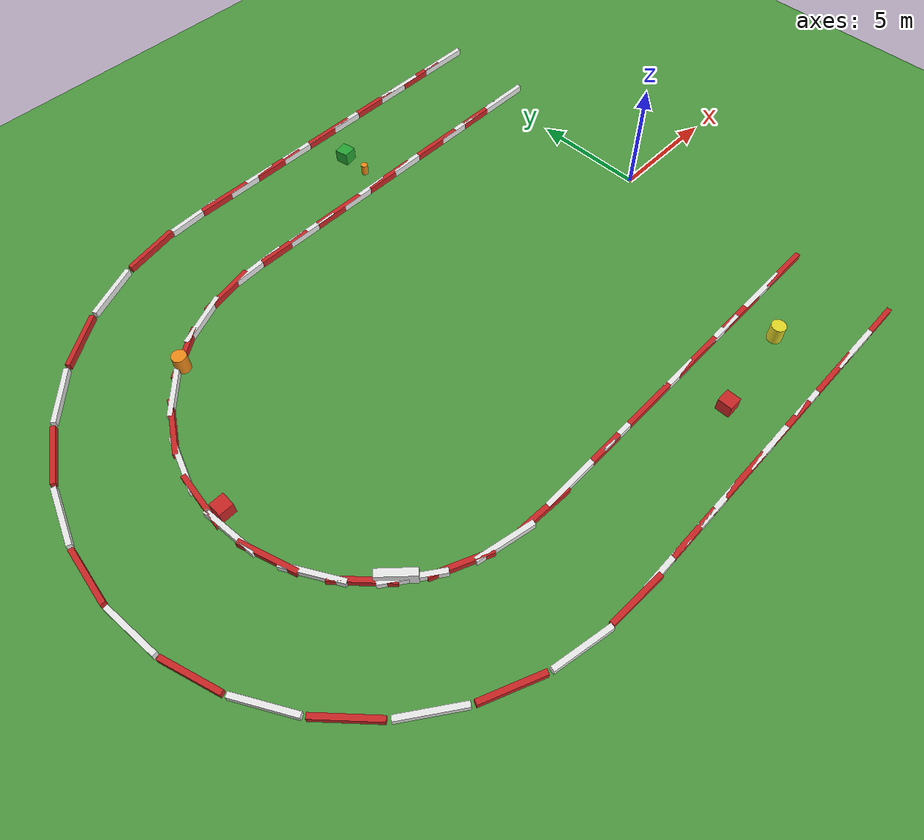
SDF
<sdf version="1.6">
 <world name="road_world">
  <include><uri>model://sun</uri></include>
  <model name="grass_ground_plane">
   <static>true</static>
   <link name="link">
    <collision name="collision">
     <geometry><plane><normal>0 0 1</normal><size>150 150</size></plane></geometry>
     <surface>
      <contact><collide_bitmask>0xffff</collide_bitmask></contact>
      <friction><ode><mu>100</mu><mu2>50</mu2></ode></friction>
     </surface>
    </collision>
    <visual name="visual">
     <cast_shadows>false</cast_shadows>
     <geometry><plane><normal>0 0 1</normal><size>150 150</size></plane></geometry>
     <material>
      <script><uri>file://media/materials/scripts/gazebo.material</uri><name>Gazebo/Grass</name></script>
     </material>
    </visual>
   </link>
  </model>
  <model name="left_curb_0">
   <static>true</static>
   <pose>-14.872 -7.904 0.15 0 0 -0.061</pose>
   <link name="link">
    <collision name="collision"><geometry><box><size>2.4 0.2 0.3</size></box></geometry></collision>
    <visual name="visual">
     <geometry><box><size>2.4 0.2 0.3</size></box></geometry>
     <material>
      <script><uri>file://media/materials/scripts/gazebo.material</uri><name>Gazebo/Red</name></script>
     </material>
    </visual>
   </link>
  </model>
  <model name="left_curb_1">
   <static>true</static>
   <pose>-13.500 -7.900 0.15 0 0 0.000</pose>
   <link name="link">
    <collision name="collision"><geometry><box><size>2.4 0.2 0.3</size></box></geometry></collision>
    <visual name="visual">
     <geometry><box><size>2.4 0.2 0.3</size></box></geometry>
     <material>
      <script><uri>file://media/materials/scripts/gazebo.material</uri><name>Gazebo/White</name></script>
     </material>
    </visual>
   </link>
  </model>
  <model name="left_curb_2">
   <static>true</static>
   <pose>-12.000 -7.900 0.15 0 0 0.000</pose>
   <link name="link">
    <collision name="collision"><geometry><box><size>2.4 0.2 0.3</size></box></geometry></collision>
    <visual name="visual">
     <geometry><box><size>2.4 0.2 0.3</size></box></geometry>
     <material>
      <script><uri>file://media/materials/scripts/gazebo.material</uri><name>Gazebo/Red</name></script>
     </material>
    </visual>
   </link>
  </model>
  <model name="left_curb_3">
   <static>true</static>
   <pose>-10.500 -7.900 0.15 0 0 0.000</pose>
   <link name="link">
    <collision name="collision"><geometry><box><size>2.4 0.2 0.3</size></box></geometry></collision>
    <visual name="visual">
     <geometry><box><size>2.4 0.2 0.3</size></box></geometry>
     <material>
      <script><uri>file://media/materials/scripts/gazebo.material</uri><name>Gazebo/White</name></script>
     </material>
    </visual>
   </link>
  </model>
  <model name="left_curb_4">
   <static>true</static>
   <pose>-9.000 -7.900 0.15 0 0 0.000</pose>
   <link name="link">
    <collision name="collision"><geometry><box><size>2.4 0.2 0.3</size></box></geometry></collision>
    <visual name="visual">
     <geometry><box><size>2.4 0.2 0.3</size></box></geometry>
     <material>
      <script><uri>file://media/materials/scripts/gazebo.material</uri><name>Gazebo/Red</name></script>
     </material>
    </visual>
   </link>
  </model>
  <model name="left_curb_5">
   <static>true</static>
   <pose>-7.500 -7.900 0.15 0 0 0.000</pose>
   <link name="link">
    <collision name="collision"><geometry><box><size>2.4 0.2 0.3</size></box></geometry></collision>
    <visual name="visual">
     <geometry><box><size>2.4 0.2 0.3</size></box></geometry>
     <material>
      <script><uri>file://media/materials/scripts/gazebo.material</uri><name>Gazebo/White</name></script>
     </material>
    </visual>
   </link>
  </model>
  <model name="left_curb_6">
   <static>true</static>
   <pose>-6.000 -7.900 0.15 0 0 0.000</pose>
   <link name="link">
    <collision name="collision"><geometry><box><size>2.4 0.2 0.3</size></box></geometry></collision>
    <visual name="visual">
     <geometry><box><size>2.4 0.2 0.3</size></box></geometry>
     <material>
      <script><uri>file://media/materials/scripts/gazebo.material</uri><name>Gazebo/Red</name></script>
     </material>
    </visual>
   </link>
  </model>
  <model name="left_curb_7">
   <static>true</static>
   <pose>-4.500 -7.900 0.15 0 0 0.000</pose>
   <link name="link">
    <collision name="collision"><geometry><box><size>2.4 0.2 0.3</size></box></geometry></collision>
    <visual name="visual">
     <geometry><box><size>2.4 0.2 0.3</size></box></geometry>
     <material>
      <script><uri>file://media/materials/scripts/gazebo.material</uri><name>Gazebo/White</name></script>
     </material>
    </visual>
   </link>
  </model>
  <model name="left_curb_8">
   <static>true</static>
   <pose>-3.000 -7.900 0.15 0 0 0.000</pose>
   <link name="link">
    <collision name="collision"><geometry><box><size>2.4 0.2 0.3</size></box></geometry></collision>
    <visual name="visual">
     <geometry><box><size>2.4 0.2 0.3</size></box></geometry>
     <material>
      <script><uri>file://media/materials/scripts/gazebo.material</uri><name>Gazebo/Red</name></script>
     </material>
    </visual>
   </link>
  </model>
  <model name="left_curb_9">
   <static>true</static>
   <pose>-1.500 -7.900 0.15 0 0 0.000</pose>
   <link name="link">
    <collision name="collision"><geometry><box><size>2.4 0.2 0.3</size></box></geometry></collision>
    <visual name="visual">
     <geometry><box><size>2.4 0.2 0.3</size></box></geometry>
     <material>
      <script><uri>file://media/materials/scripts/gazebo.material</uri><name>Gazebo/White</name></script>
     </material>
    </visual>
   </link>
  </model>
  <model name="left_curb_10">
   <static>true</static>
   <pose>0.000 -7.900 0.15 0 0 0.000</pose>
   <link name="link">
    <collision name="collision"><geometry><box><size>2.4 0.2 0.3</size></box></geometry></collision>
    <visual name="visual">
     <geometry><box><size>2.4 0.2 0.3</size></box></geometry>
     <material>
      <script><uri>file://media/materials/scripts/gazebo.material</uri><name>Gazebo/Red</name></script>
     </material>
    </visual>
   </link>
  </model>
  <model name="left_curb_45">
   <static>true</static>
   <pose>0.000 7.900 0.15 0 0 3.142</pose>
   <link name="link">
    <collision name="collision"><geometry><box><size>2.4 0.2 0.3</size></box></geometry></collision>
    <visual name="visual">
     <geometry><box><size>2.4 0.2 0.3</size></box></geometry>
     <material>
      <script><uri>file://media/materials/scripts/gazebo.material</uri><name>Gazebo/White</name></script>
     </material>
    </visual>
   </link>
  </model>
  <model name="left_curb_46">
   <static>true</static>
   <pose>-1.500 7.900 0.15 0 0 3.142</pose>
   <link name="link">
    <collision name="collision"><geometry><box><size>2.4 0.2 0.3</size></box></geometry></collision>
    <visual name="visual">
     <geometry><box><size>2.4 0.2 0.3</size></box></geometry>
     <material>
      <script><uri>file://media/materials/scripts/gazebo.material</uri><name>Gazebo/Red</name></script>
     </material>
    </visual>
   </link>
  </model>
  <model name="left_curb_47">
   <static>true</static>
   <pose>-3.000 7.900 0.15 0 0 3.142</pose>
   <link name="link">
    <collision name="collision"><geometry><box><size>2.4 0.2 0.3</size></box></geometry></collision>
    <visual name="visual">
     <geometry><box><size>2.4 0.2 0.3</size></box></geometry>
     <material>
      <script><uri>file://media/materials/scripts/gazebo.material</uri><name>Gazebo/White</name></script>
     </material>
    </visual>
   </link>
  </model>
  <model name="left_curb_48">
   <static>true</static>
   <pose>-4.500 7.900 0.15 0 0 3.142</pose>
   <link name="link">
    <collision name="collision"><geometry><box><size>2.4 0.2 0.3</size></box></geometry></collision>
    <visual name="visual">
     <geometry><box><size>2.4 0.2 0.3</size></box></geometry>
     <material>
      <script><uri>file://media/materials/scripts/gazebo.material</uri><name>Gazebo/Red</name></script>
     </material>
    </visual>
   </link>
  </model>
  <model name="left_curb_49">
   <static>true</static>
   <pose>-6.000 7.900 0.15 0 0 3.142</pose>
   <link name="link">
    <collision name="collision"><geometry><box><size>2.4 0.2 0.3</size></box></geometry></collision>
    <visual name="visual">
     <geometry><box><size>2.4 0.2 0.3</size></box></geometry>
     <material>
      <script><uri>file://media/materials/scripts/gazebo.material</uri><name>Gazebo/White</name></script>
     </material>
    </visual>
   </link>
  </model>
  <model name="left_curb_50">
   <static>true</static>
   <pose>-7.500 7.900 0.15 0 0 3.142</pose>
   <link name="link">
    <collision name="collision"><geometry><box><size>2.4 0.2 0.3</size></box></geometry></collision>
    <visual name="visual">
     <geometry><box><size>2.4 0.2 0.3</size></box></geometry>
     <material>
      <script><uri>file://media/materials/scripts/gazebo.material</uri><name>Gazebo/Red</name></script>
     </material>
    </visual>
   </link>
  </model>
  <model name="left_curb_51">
   <static>true</static>
   <pose>-9.000 7.900 0.15 0 0 3.142</pose>
   <link name="link">
    <collision name="collision"><geometry><box><size>2.4 0.2 0.3</size></box></geometry></collision>
    <visual name="visual">
     <geometry><box><size>2.4 0.2 0.3</size></box></geometry>
     <material>
      <script><uri>file://media/materials/scripts/gazebo.material</uri><name>Gazebo/White</name></script>
     </material>
    </visual>
   </link>
  </model>
  <model name="left_curb_52">
   <static>true</static>
   <pose>-10.500 7.900 0.15 0 0 3.142</pose>
   <link name="link">
    <collision name="collision"><geometry><box><size>2.4 0.2 0.3</size></box></geometry></collision>
    <visual name="visual">
     <geometry><box><size>2.4 0.2 0.3</size></box></geometry>
     <material>
      <script><uri>file://media/materials/scripts/gazebo.material</uri><name>Gazebo/Red</name></script>
     </material>
    </visual>
   </link>
  </model>
  <model name="left_curb_53">
   <static>true</static>
   <pose>-12.000 7.900 0.15 0 0 3.142</pose>
   <link name="link">
    <collision name="collision"><geometry><box><size>2.4 0.2 0.3</size></box></geometry></collision>
    <visual name="visual">
     <geometry><box><size>2.4 0.2 0.3</size></box></geometry>
     <material>
      <script><uri>file://media/materials/scripts/gazebo.material</uri><name>Gazebo/White</name></script>
     </material>
    </visual>
   </link>
  </model>
  <model name="left_curb_54">
   <static>true</static>
   <pose>-13.500 7.900 0.15 0 0 3.142</pose>
   <link name="link">
    <collision name="collision"><geometry><box><size>2.4 0.2 0.3</size></box></geometry></collision>
    <visual name="visual">
     <geometry><box><size>2.4 0.2 0.3</size></box></geometry>
     <material>
      <script><uri>file://media/materials/scripts/gazebo.material</uri><name>Gazebo/Red</name></script>
     </material>
    </visual>
   </link>
  </model>
  <model name="left_curb_55">
   <static>true</static>
   <pose>-14.872 7.904 0.15 0 0 -3.081</pose>
   <link name="link">
    <collision name="collision"><geometry><box><size>2.4 0.2 0.3</size></box></geometry></collision>
    <visual name="visual">
     <geometry><box><size>2.4 0.2 0.3</size></box></geometry>
     <material>
      <script><uri>file://media/materials/scripts/gazebo.material</uri><name>Gazebo/White</name></script>
     </material>
    </visual>
   </link>
  </model>
  <model name="left_curb_56">
   <static>true</static>
   <pose>-16.643 7.727 0.15 0 0 -2.932</pose>
   <link name="link">
    <collision name="collision"><geometry><box><size>2.4 0.2 0.3</size></box></geometry></collision>
    <visual name="visual">
     <geometry><box><size>2.4 0.2 0.3</size></box></geometry>
     <material>
      <script><uri>file://media/materials/scripts/gazebo.material</uri><name>Gazebo/Red</name></script>
     </material>
    </visual>
   </link>
  </model>
  <model name="left_curb_57">
   <static>true</static>
   <pose>-18.213 7.217 0.15 0 0 -2.723</pose>
   <link name="link">
    <collision name="collision"><geometry><box><size>2.4 0.2 0.3</size></box></geometry></collision>
    <visual name="visual">
     <geometry><box><size>2.4 0.2 0.3</size></box></geometry>
     <material>
      <script><uri>file://media/materials/scripts/gazebo.material</uri><name>Gazebo/White</name></script>
     </material>
    </visual>
   </link>
  </model>
  <model name="left_curb_58">
   <static>true</static>
   <pose>-19.644 6.391 0.15 0 0 -2.513</pose>
   <link name="link">
    <collision name="collision"><geometry><box><size>2.4 0.2 0.3</size></box></geometry></collision>
    <visual name="visual">
     <geometry><box><size>2.4 0.2 0.3</size></box></geometry>
     <material>
      <script><uri>file://media/materials/scripts/gazebo.material</uri><name>Gazebo/Red</name></script>
     </material>
    </visual>
   </link>
  </model>
  <model name="left_curb_59">
   <static>true</static>
   <pose>-20.871 5.286 0.15 0 0 -2.304</pose>
   <link name="link">
    <collision name="collision"><geometry><box><size>2.4 0.2 0.3</size></box></geometry></collision>
    <visual name="visual">
     <geometry><box><size>2.4 0.2 0.3</size></box></geometry>
     <material>
      <script><uri>file://media/materials/scripts/gazebo.material</uri><name>Gazebo/White</name></script>
     </material>
    </visual>
   </link>
  </model>
  <model name="left_curb_60">
   <static>true</static>
   <pose>-21.842 3.950 0.15 0 0 -2.094</pose>
   <link name="link">
    <collision name="collision"><geometry><box><size>2.4 0.2 0.3</size></box></geometry></collision>
    <visual name="visual">
     <geometry><box><size>2.4 0.2 0.3</size></box></geometry>
     <material>
      <script><uri>file://media/materials/scripts/gazebo.material</uri><name>Gazebo/Red</name></script>
     </material>
    </visual>
   </link>
  </model>
  <model name="left_curb_61">
   <static>true</static>
   <pose>-22.513 2.441 0.15 0 0 -1.885</pose>
   <link name="link">
    <collision name="collision"><geometry><box><size>2.4 0.2 0.3</size></box></geometry></collision>
    <visual name="visual">
     <geometry><box><size>2.4 0.2 0.3</size></box></geometry>
     <material>
      <script><uri>file://media/materials/scripts/gazebo.material</uri><name>Gazebo/White</name></script>
     </material>
    </visual>
   </link>
  </model>
  <model name="left_curb_62">
   <static>true</static>
   <pose>-22.857 0.826 0.15 0 0 -1.676</pose>
   <link name="link">
    <collision name="collision"><geometry><box><size>2.4 0.2 0.3</size></box></geometry></collision>
    <visual name="visual">
     <geometry><box><size>2.4 0.2 0.3</size></box></geometry>
     <material>
      <script><uri>file://media/materials/scripts/gazebo.material</uri><name>Gazebo/Red</name></script>
     </material>
    </visual>
   </link>
  </model>
  <model name="left_curb_63">
   <static>true</static>
   <pose>-22.857 -0.826 0.15 0 0 -1.466</pose>
   <link name="link">
    <collision name="collision"><geometry><box><size>2.4 0.2 0.3</size></box></geometry></collision>
    <visual name="visual">
     <geometry><box><size>2.4 0.2 0.3</size></box></geometry>
     <material>
      <script><uri>file://media/materials/scripts/gazebo.material</uri><name>Gazebo/White</name></script>
     </material>
    </visual>
   </link>
  </model>
  <model name="left_curb_64">
   <static>true</static>
   <pose>-22.513 -2.441 0.15 0 0 -1.257</pose>
   <link name="link">
    <collision name="collision"><geometry><box><size>2.4 0.2 0.3</size></box></geometry></collision>
    <visual name="visual">
     <geometry><box><size>2.4 0.2 0.3</size></box></geometry>
     <material>
      <script><uri>file://media/materials/scripts/gazebo.material</uri><name>Gazebo/Red</name></script>
     </material>
    </visual>
   </link>
  </model>
  <model name="left_curb_65">
   <static>true</static>
   <pose>-21.842 -3.950 0.15 0 0 -1.047</pose>
   <link name="link">
    <collision name="collision"><geometry><box><size>2.4 0.2 0.3</size></box></geometry></collision>
    <visual name="visual">
     <geometry><box><size>2.4 0.2 0.3</size></box></geometry>
     <material>
      <script><uri>file://media/materials/scripts/gazebo.material</uri><name>Gazebo/White</name></script>
     </material>
    </visual>
   </link>
  </model>
  <model name="left_curb_66">
   <static>true</static>
   <pose>-20.871 -5.286 0.15 0 0 -0.838</pose>
   <link name="link">
    <collision name="collision"><geometry><box><size>2.4 0.2 0.3</size></box></geometry></collision>
    <visual name="visual">
     <geometry><box><size>2.4 0.2 0.3</size></box></geometry>
     <material>
      <script><uri>file://media/materials/scripts/gazebo.material</uri><name>Gazebo/Red</name></script>
     </material>
    </visual>
   </link>
  </model>
  <model name="left_curb_67">
   <static>true</static>
   <pose>-19.644 -6.391 0.15 0 0 -0.628</pose>
   <link name="link">
    <collision name="collision"><geometry><box><size>2.4 0.2 0.3</size></box></geometry></collision>
    <visual name="visual">
     <geometry><box><size>2.4 0.2 0.3</size></box></geometry>
     <material>
      <script><uri>file://media/materials/scripts/gazebo.material</uri><name>Gazebo/White</name></script>
     </material>
    </visual>
   </link>
  </model>
  <model name="left_curb_68">
   <static>true</static>
   <pose>-18.213 -7.217 0.15 0 0 -0.419</pose>
   <link name="link">
    <collision name="collision"><geometry><box><size>2.4 0.2 0.3</size></box></geometry></collision>
    <visual name="visual">
     <geometry><box><size>2.4 0.2 0.3</size></box></geometry>
     <material>
      <script><uri>file://media/materials/scripts/gazebo.material</uri><name>Gazebo/Red</name></script>
     </material>
    </visual>
   </link>
  </model>
  <model name="left_curb_69">
   <static>true</static>
   <pose>-16.643 -7.727 0.15 0 0 -0.209</pose>
   <link name="link">
    <collision name="collision"><geometry><box><size>2.4 0.2 0.3</size></box></geometry></collision>
    <visual name="visual">
     <geometry><box><size>2.4 0.2 0.3</size></box></geometry>
     <material>
      <script><uri>file://media/materials/scripts/gazebo.material</uri><name>Gazebo/White</name></script>
     </material>
    </visual>
   </link>
  </model>
  <model name="right_curb_0">
   <static>true</static>
   <pose>-15.128 -12.096 0.15 0 0 -0.061</pose>
   <link name="link">
    <collision name="collision"><geometry><box><size>2.4 0.2 0.3</size></box></geometry></collision>
    <visual name="visual">
     <geometry><box><size>2.4 0.2 0.3</size></box></geometry>
     <material>
      <script><uri>file://media/materials/scripts/gazebo.material</uri><name>Gazebo/Red</name></script>
     </material>
    </visual>
   </link>
  </model>
  <model name="right_curb_1">
   <static>true</static>
   <pose>-13.500 -12.100 0.15 0 0 0.000</pose>
   <link name="link">
    <collision name="collision"><geometry><box><size>2.4 0.2 0.3</size></box></geometry></collision>
    <visual name="visual">
     <geometry><box><size>2.4 0.2 0.3</size></box></geometry>
     <material>
      <script><uri>file://media/materials/scripts/gazebo.material</uri><name>Gazebo/White</name></script>
     </material>
    </visual>
   </link>
  </model>
  <model name="right_curb_2">
   <static>true</static>
   <pose>-12.000 -12.100 0.15 0 0 0.000</pose>
   <link name="link">
    <collision name="collision"><geometry><box><size>2.4 0.2 0.3</size></box></geometry></collision>
    <visual name="visual">
     <geometry><box><size>2.4 0.2 0.3</size></box></geometry>
     <material>
      <script><uri>file://media/materials/scripts/gazebo.material</uri><name>Gazebo/Red</name></script>
     </material>
    </visual>
   </link>
  </model>
  <model name="right_curb_3">
   <static>true</static>
   <pose>-10.500 -12.100 0.15 0 0 0.000</pose>
   <link name="link">
    <collision name="collision"><geometry><box><size>2.4 0.2 0.3</size></box></geometry></collision>
    <visual name="visual">
     <geometry><box><size>2.4 0.2 0.3</size></box></geometry>
     <material>
      <script><uri>file://media/materials/scripts/gazebo.material</uri><name>Gazebo/White</name></script>
     </material>
    </visual>
   </link>
  </model>
  <model name="right_curb_4">
   <static>true</static>
   <pose>-9.000 -12.100 0.15 0 0 0.000</pose>
   <link name="link">
    <collision name="collision"><geometry><box><size>2.4 0.2 0.3</size></box></geometry></collision>
    <visual name="visual">
     <geometry><box><size>2.4 0.2 0.3</size></box></geometry>
     <material>
      <script><uri>file://media/materials/scripts/gazebo.material</uri><name>Gazebo/Red</name></script>
     </material>
    </visual>
   </link>
  </model>
  <model name="right_curb_5">
   <static>true</static>
   <pose>-7.500 -12.100 0.15 0 0 0.000</pose>
   <link name="link">
    <collision name="collision"><geometry><box><size>2.4 0.2 0.3</size></box></geometry></collision>
    <visual name="visual">
     <geometry><box><size>2.4 0.2 0.3</size></box></geometry>
     <material>
      <script><uri>file://media/materials/scripts/gazebo.material</uri><name>Gazebo/White</name></script>
     </material>
    </visual>
   </link>
  </model>
  <model name="right_curb_6">
   <static>true</static>
   <pose>-6.000 -12.100 0.15 0 0 0.000</pose>
   <link name="link">
    <collision name="collision"><geometry><box><size>2.4 0.2 0.3</size></box></geometry></collision>
    <visual name="visual">
     <geometry><box><size>2.4 0.2 0.3</size></box></geometry>
     <material>
      <script><uri>file://media/materials/scripts/gazebo.material</uri><name>Gazebo/Red</name></script>
     </material>
    </visual>
   </link>
  </model>
  <model name="right_curb_7">
   <static>true</static>
   <pose>-4.500 -12.100 0.15 0 0 0.000</pose>
   <link name="link">
    <collision name="collision"><geometry><box><size>2.4 0.2 0.3</size></box></geometry></collision>
    <visual name="visual">
     <geometry><box><size>2.4 0.2 0.3</size></box></geometry>
     <material>
      <script><uri>file://media/materials/scripts/gazebo.material</uri><name>Gazebo/White</name></script>
     </material>
    </visual>
   </link>
  </model>
  <model name="right_curb_8">
   <static>true</static>
   <pose>-3.000 -12.100 0.15 0 0 0.000</pose>
   <link name="link">
    <collision name="collision"><geometry><box><size>2.4 0.2 0.3</size></box></geometry></collision>
    <visual name="visual">
     <geometry><box><size>2.4 0.2 0.3</size></box></geometry>
     <material>
      <script><uri>file://media/materials/scripts/gazebo.material</uri><name>Gazebo/Red</name></script>
     </material>
    </visual>
   </link>
  </model>
  <model name="right_curb_9">
   <static>true</static>
   <pose>-1.500 -12.100 0.15 0 0 0.000</pose>
   <link name="link">
    <collision name="collision"><geometry><box><size>2.4 0.2 0.3</size></box></geometry></collision>
    <visual name="visual">
     <geometry><box><size>2.4 0.2 0.3</size></box></geometry>
     <material>
      <script><uri>file://media/materials/scripts/gazebo.material</uri><name>Gazebo/White</name></script>
     </material>
    </visual>
   </link>
  </model>
  <model name="right_curb_10">
   <static>true</static>
   <pose>0.000 -12.100 0.15 0 0 0.000</pose>
   <link name="link">
    <collision name="collision"><geometry><box><size>2.4 0.2 0.3</size></box></geometry></collision>
    <visual name="visual">
     <geometry><box><size>2.4 0.2 0.3</size></box></geometry>
     <material>
      <script><uri>file://media/materials/scripts/gazebo.material</uri><name>Gazebo/Red</name></script>
     </material>
    </visual>
   </link>
  </model>
  <model name="right_curb_45">
   <static>true</static>
   <pose>0.000 12.100 0.15 0 0 3.142</pose>
   <link name="link">
    <collision name="collision"><geometry><box><size>2.4 0.2 0.3</size></box></geometry></collision>
    <visual name="visual">
     <geometry><box><size>2.4 0.2 0.3</size></box></geometry>
     <material>
      <script><uri>file://media/materials/scripts/gazebo.material</uri><name>Gazebo/White</name></script>
     </material>
    </visual>
   </link>
  </model>
  <model name="right_curb_46">
   <static>true</static>
   <pose>-1.500 12.100 0.15 0 0 3.142</pose>
   <link name="link">
    <collision name="collision"><geometry><box><size>2.4 0.2 0.3</size></box></geometry></collision>
    <visual name="visual">
     <geometry><box><size>2.4 0.2 0.3</size></box></geometry>
     <material>
      <script><uri>file://media/materials/scripts/gazebo.material</uri><name>Gazebo/Red</name></script>
     </material>
    </visual>
   </link>
  </model>
  <model name="right_curb_47">
   <static>true</static>
   <pose>-3.000 12.100 0.15 0 0 3.142</pose>
   <link name="link">
    <collision name="collision"><geometry><box><size>2.4 0.2 0.3</size></box></geometry></collision>
    <visual name="visual">
     <geometry><box><size>2.4 0.2 0.3</size></box></geometry>
     <material>
      <script><uri>file://media/materials/scripts/gazebo.material</uri><name>Gazebo/White</name></script>
     </material>
    </visual>
   </link>
  </model>
  <model name="right_curb_48">
   <static>true</static>
   <pose>-4.500 12.100 0.15 0 0 3.142</pose>
   <link name="link">
    <collision name="collision"><geometry><box><size>2.4 0.2 0.3</size></box></geometry></collision>
    <visual name="visual">
     <geometry><box><size>2.4 0.2 0.3</size></box></geometry>
     <material>
      <script><uri>file://media/materials/scripts/gazebo.material</uri><name>Gazebo/Red</name></script>
     </material>
    </visual>
   </link>
  </model>
  <model name="right_curb_49">
   <static>true</static>
   <pose>-6.000 12.100 0.15 0 0 3.142</pose>
   <link name="link">
    <collision name="collision"><geometry><box><size>2.4 0.2 0.3</size></box></geometry></collision>
    <visual name="visual">
     <geometry><box><size>2.4 0.2 0.3</size></box></geometry>
     <material>
      <script><uri>file://media/materials/scripts/gazebo.material</uri><name>Gazebo/White</name></script>
     </material>
    </visual>
   </link>
  </model>
  <model name="right_curb_50">
   <static>true</static>
   <pose>-7.500 12.100 0.15 0 0 3.142</pose>
   <link name="link">
    <collision name="collision"><geometry><box><size>2.4 0.2 0.3</size></box></geometry></collision>
    <visual name="visual">
     <geometry><box><size>2.4 0.2 0.3</size></box></geometry>
     <material>
      <script><uri>file://media/materials/scripts/gazebo.material</uri><name>Gazebo/Red</name></script>
     </material>
    </visual>
   </link>
  </model>
  <model name="right_curb_51">
   <static>true</static>
   <pose>-9.000 12.100 0.15 0 0 3.142</pose>
   <link name="link">
    <collision name="collision"><geometry><box><size>2.4 0.2 0.3</size></box></geometry></collision>
    <visual name="visual">
     <geometry><box><size>2.4 0.2 0.3</size></box></geometry>
     <material>
      <script><uri>file://media/materials/scripts/gazebo.material</uri><name>Gazebo/White</name></script>
     </material>
    </visual>
   </link>
  </model>
  <model name="right_curb_52">
   <static>true</static>
   <pose>-10.500 12.100 0.15 0 0 3.142</pose>
   <link name="link">
    <collision name="collision"><geometry><box><size>2.4 0.2 0.3</size></box></geometry></collision>
    <visual name="visual">
     <geometry><box><size>2.4 0.2 0.3</size></box></geometry>
     <material>
      <script><uri>file://media/materials/scripts/gazebo.material</uri><name>Gazebo/Red</name></script>
     </material>
    </visual>
   </link>
  </model>
  <model name="right_curb_53">
   <static>true</static>
   <pose>-12.000 12.100 0.15 0 0 3.142</pose>
   <link name="link">
    <collision name="collision"><geometry><box><size>2.4 0.2 0.3</size></box></geometry></collision>
    <visual name="visual">
     <geometry><box><size>2.4 0.2 0.3</size></box></geometry>
     <material>
      <script><uri>file://media/materials/scripts/gazebo.material</uri><name>Gazebo/White</name></script>
     </material>
    </visual>
   </link>
  </model>
  <model name="right_curb_54">
   <static>true</static>
   <pose>-13.500 12.100 0.15 0 0 3.142</pose>
   <link name="link">
    <collision name="collision"><geometry><box><size>2.4 0.2 0.3</size></box></geometry></collision>
    <visual name="visual">
     <geometry><box><size>2.4 0.2 0.3</size></box></geometry>
     <material>
      <script><uri>file://media/materials/scripts/gazebo.material</uri><name>Gazebo/Red</name></script>
     </material>
    </visual>
   </link>
  </model>
  <model name="right_curb_55">
   <static>true</static>
   <pose>-15.128 12.096 0.15 0 0 -3.081</pose>
   <link name="link">
    <collision name="collision"><geometry><box><size>2.4 0.2 0.3</size></box></geometry></collision>
    <visual name="visual">
     <geometry><box><size>2.4 0.2 0.3</size></box></geometry>
     <material>
      <script><uri>file://media/materials/scripts/gazebo.material</uri><name>Gazebo/White</name></script>
     </material>
    </visual>
   </link>
  </model>
  <model name="right_curb_56">
   <static>true</static>
   <pose>-17.516 11.836 0.15 0 0 -2.932</pose>
   <link name="link">
    <collision name="collision"><geometry><box><size>2.4 0.2 0.3</size></box></geometry></collision>
    <visual name="visual">
     <geometry><box><size>2.4 0.2 0.3</size></box></geometry>
     <material>
      <script><uri>file://media/materials/scripts/gazebo.material</uri><name>Gazebo/Red</name></script>
     </material>
    </visual>
   </link>
  </model>
  <model name="right_curb_57">
   <static>true</static>
   <pose>-19.922 11.054 0.15 0 0 -2.723</pose>
   <link name="link">
    <collision name="collision"><geometry><box><size>2.4 0.2 0.3</size></box></geometry></collision>
    <visual name="visual">
     <geometry><box><size>2.4 0.2 0.3</size></box></geometry>
     <material>
      <script><uri>file://media/materials/scripts/gazebo.material</uri><name>Gazebo/White</name></script>
     </material>
    </visual>
   </link>
  </model>
  <model name="right_curb_58">
   <static>true</static>
   <pose>-22.112 9.789 0.15 0 0 -2.513</pose>
   <link name="link">
    <collision name="collision"><geometry><box><size>2.4 0.2 0.3</size></box></geometry></collision>
    <visual name="visual">
     <geometry><box><size>2.4 0.2 0.3</size></box></geometry>
     <material>
      <script><uri>file://media/materials/scripts/gazebo.material</uri><name>Gazebo/Red</name></script>
     </material>
    </visual>
   </link>
  </model>
  <model name="right_curb_59">
   <static>true</static>
   <pose>-23.992 8.096 0.15 0 0 -2.304</pose>
   <link name="link">
    <collision name="collision"><geometry><box><size>2.4 0.2 0.3</size></box></geometry></collision>
    <visual name="visual">
     <geometry><box><size>2.4 0.2 0.3</size></box></geometry>
     <material>
      <script><uri>file://media/materials/scripts/gazebo.material</uri><name>Gazebo/White</name></script>
     </material>
    </visual>
   </link>
  </model>
  <model name="right_curb_60">
   <static>true</static>
   <pose>-25.479 6.050 0.15 0 0 -2.094</pose>
   <link name="link">
    <collision name="collision"><geometry><box><size>2.4 0.2 0.3</size></box></geometry></collision>
    <visual name="visual">
     <geometry><box><size>2.4 0.2 0.3</size></box></geometry>
     <material>
      <script><uri>file://media/materials/scripts/gazebo.material</uri><name>Gazebo/Red</name></script>
     </material>
    </visual>
   </link>
  </model>
  <model name="right_curb_61">
   <static>true</static>
   <pose>-26.508 3.739 0.15 0 0 -1.885</pose>
   <link name="link">
    <collision name="collision"><geometry><box><size>2.4 0.2 0.3</size></box></geometry></collision>
    <visual name="visual">
     <geometry><box><size>2.4 0.2 0.3</size></box></geometry>
     <material>
      <script><uri>file://media/materials/scripts/gazebo.material</uri><name>Gazebo/White</name></script>
     </material>
    </visual>
   </link>
  </model>
  <model name="right_curb_62">
   <static>true</static>
   <pose>-27.034 1.265 0.15 0 0 -1.676</pose>
   <link name="link">
    <collision name="collision"><geometry><box><size>2.4 0.2 0.3</size></box></geometry></collision>
    <visual name="visual">
     <geometry><box><size>2.4 0.2 0.3</size></box></geometry>
     <material>
      <script><uri>file://media/materials/scripts/gazebo.material</uri><name>Gazebo/Red</name></script>
     </material>
    </visual>
   </link>
  </model>
  <model name="right_curb_63">
   <static>true</static>
   <pose>-27.034 -1.265 0.15 0 0 -1.466</pose>
   <link name="link">
    <collision name="collision"><geometry><box><size>2.4 0.2 0.3</size></box></geometry></collision>
    <visual name="visual">
     <geometry><box><size>2.4 0.2 0.3</size></box></geometry>
     <material>
      <script><uri>file://media/materials/scripts/gazebo.material</uri><name>Gazebo/White</name></script>
     </material>
    </visual>
   </link>
  </model>
  <model name="right_curb_64">
   <static>true</static>
   <pose>-26.508 -3.739 0.15 0 0 -1.257</pose>
   <link name="link">
    <collision name="collision"><geometry><box><size>2.4 0.2 0.3</size></box></geometry></collision>
    <visual name="visual">
     <geometry><box><size>2.4 0.2 0.3</size></box></geometry>
     <material>
      <script><uri>file://media/materials/scripts/gazebo.material</uri><name>Gazebo/Red</name></script>
     </material>
    </visual>
   </link>
  </model>
  <model name="right_curb_65">
   <static>true</static>
   <pose>-25.479 -6.050 0.15 0 0 -1.047</pose>
   <link name="link">
    <collision name="collision"><geometry><box><size>2.4 0.2 0.3</size></box></geometry></collision>
    <visual name="visual">
     <geometry><box><size>2.4 0.2 0.3</size></box></geometry>
     <material>
      <script><uri>file://media/materials/scripts/gazebo.material</uri><name>Gazebo/White</name></script>
     </material>
    </visual>
   </link>
  </model>
  <model name="right_curb_66">
   <static>true</static>
   <pose>-23.992 -8.096 0.15 0 0 -0.838</pose>
   <link name="link">
    <collision name="collision"><geometry><box><size>2.4 0.2 0.3</size></box></geometry></collision>
    <visual name="visual">
     <geometry><box><size>2.4 0.2 0.3</size></box></geometry>
     <material>
      <script><uri>file://media/materials/scripts/gazebo.material</uri><name>Gazebo/Red</name></script>
     </material>
    </visual>
   </link>
  </model>
  <model name="right_curb_67">
   <static>true</static>
   <pose>-22.112 -9.789 0.15 0 0 -0.628</pose>
   <link name="link">
    <collision name="collision"><geometry><box><size>2.4 0.2 0.3</size></box></geometry></collision>
    <visual name="visual">
     <geometry><box><size>2.4 0.2 0.3</size></box></geometry>
     <material>
      <script><uri>file://media/materials/scripts/gazebo.material</uri><name>Gazebo/White</name></script>
     </material>
    </visual>
   </link>
  </model>
  <model name="right_curb_68">
   <static>true</static>
   <pose>-19.922 -11.054 0.15 0 0 -0.419</pose>
   <link name="link">
    <collision name="collision"><geometry><box><size>2.4 0.2 0.3</size></box></geometry></collision>
    <visual name="visual">
     <geometry><box><size>2.4 0.2 0.3</size></box></geometry>
     <material>
      <script><uri>file://media/materials/scripts/gazebo.material</uri><name>Gazebo/Red</name></script>
     </material>
    </visual>
   </link>
  </model>
  <model name="right_curb_69">
   <static>true</static>
   <pose>-17.516 -11.836 0.15 0 0 -0.209</pose>
   <link name="link">
    <collision name="collision"><geometry><box><size>2.4 0.2 0.3</size></box></geometry></collision>
    <visual name="visual">
     <geometry><box><size>2.4 0.2 0.3</size></box></geometry>
     <material>
      <script><uri>file://media/materials/scripts/gazebo.material</uri><name>Gazebo/White</name></script>
     </material>
    </visual>
   </link>
  </model>
  <model name="cone_top_2">
   <static>true</static>
   <pose>-8.0 9.0 0.25 0 0 0</pose>
   <link name="link">
    <collision name="collision">
     <geometry><cylinder><radius>0.15</radius><length>0.5</length></cylinder></geometry>
    </collision>
    <visual name="visual">
     <geometry><cylinder><radius>0.15</radius><length>0.5</length></cylinder></geometry>
     <material>
      <script><uri>file://media/materials/scripts/gazebo.material</uri><name>Gazebo/Orange</name></script>
     </material>
    </visual>
   </link>
  </model>
  <model name="obstacle_box_1">
   <static>true</static>
   <pose>-7.0 -10.0 0.3 0 0 0</pose>
   <link name="link">
    <collision name="collision"><geometry><box><size>0.6 0.6 0.6</size></box></geometry></collision>
    <visual name="visual">
     <geometry><box><size>0.6 0.6 0.6</size></box></geometry>
     <material>
      <script><uri>file://media/materials/scripts/gazebo.material</uri><name>Gazebo/Red</name></script>
     </material>
    </visual>
   </link>
  </model>
  <model name="obstacle_cyl_1">
   <static>true</static>
   <pose>-3.0 -9.5 0.4 0 0 0</pose>
   <link name="link">
    <collision name="collision">
     <geometry><cylinder><radius>0.3</radius><length>0.8</length></cylinder></geometry>
    </collision>
    <visual name="visual">
     <geometry><cylinder><radius>0.3</radius><length>0.8</length></cylinder></geometry>
     <material>
      <script><uri>file://media/materials/scripts/gazebo.material</uri><name>Gazebo/Yellow</name></script>
     </material>
    </visual>
   </link>
  </model>
  <model name="obstacle_box_6">
   <static>true</static>
   <pose>-8.0 10.3 0.3 0 0 0.2</pose>
   <link name="link">
    <collision name="collision"><geometry><box><size>0.6 0.6 0.6</size></box></geometry></collision>
    <visual name="visual">
     <geometry><box><size>0.6 0.6 0.6</size></box></geometry>
     <material>
      <script><uri>file://media/materials/scripts/gazebo.material</uri><name>Gazebo/Green</name></script>
     </material>
    </visual>
   </link>
  </model>
  <model name="obstacle_cyl_5">
   <static>true</static>
   <pose>-20.0 6.0 0.4 0 0 0</pose>
   <link name="link">
    <collision name="collision">
     <geometry><cylinder><radius>0.3</radius><length>0.8</length></cylinder></geometry>
    </collision>
    <visual name="visual">
     <geometry><cylinder><radius>0.3</radius><length>0.8</length></cylinder></geometry>
     <material>
      <script><uri>file://media/materials/scripts/gazebo.material</uri><name>Gazebo/Orange</name></script>
     </material>
    </visual>
   </link>
  </model>
  <model name="obstacle_box_7">
   <static>true</static>
   <pose>-22.5 0.0 0.3 0 0 0</pose>
   <link name="link">
    <collision name="collision"><geometry><box><size>0.6 0.6 0.6</size></box></geometry></collision>
    <visual name="visual">
     <geometry><box><size>0.6 0.6 0.6</size></box></geometry>
     <material>
      <script><uri>file://media/materials/scripts/gazebo.material</uri><name>Gazebo/Red</name></script>
     </material>
    </visual>
   </link>
  </model>
  <model name="obstacle_wall_3">
   <static>true</static>
   <pose>-20.0 -6.0 0.3 0 0 0.8</pose>
   <link name="link">
    <collision name="collision"><geometry><box><size>0.3 1.5 0.6</size></box></geometry></collision>
    <visual name="visual">
     <geometry><box><size>0.3 1.5 0.6</size></box></geometry>
     <material>
      <script><uri>file://media/materials/scripts/gazebo.material</uri><name>Gazebo/White</name></script>
     </material>
    </visual>
   </link>
  </model>
 </world>
</sdf>
